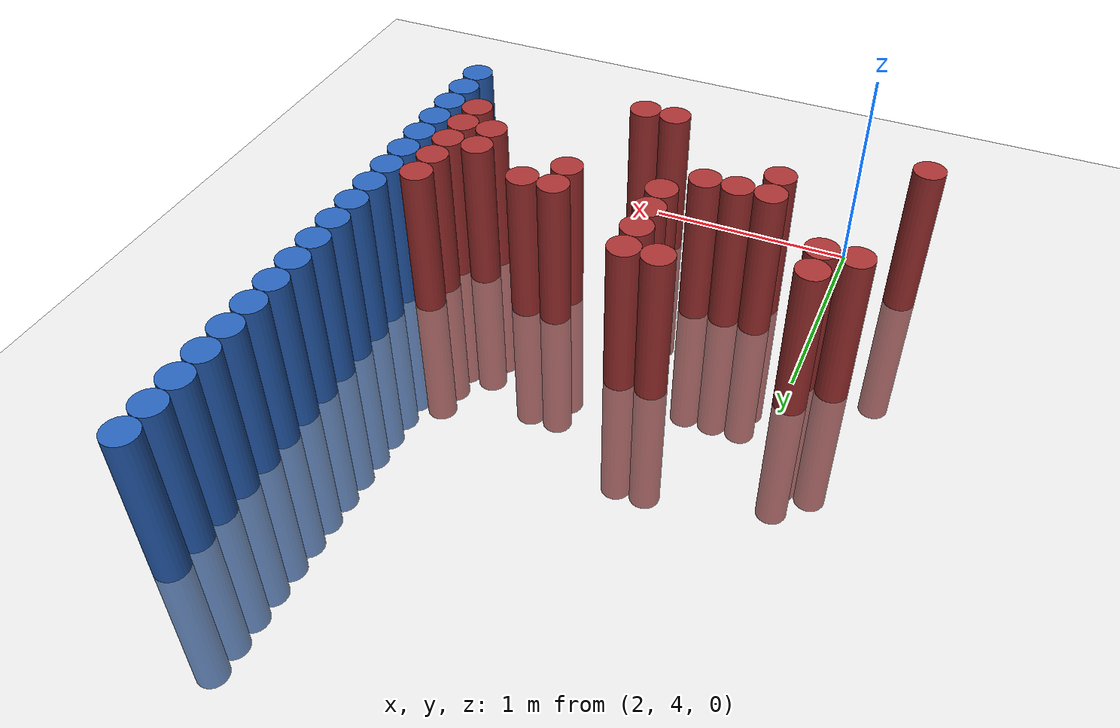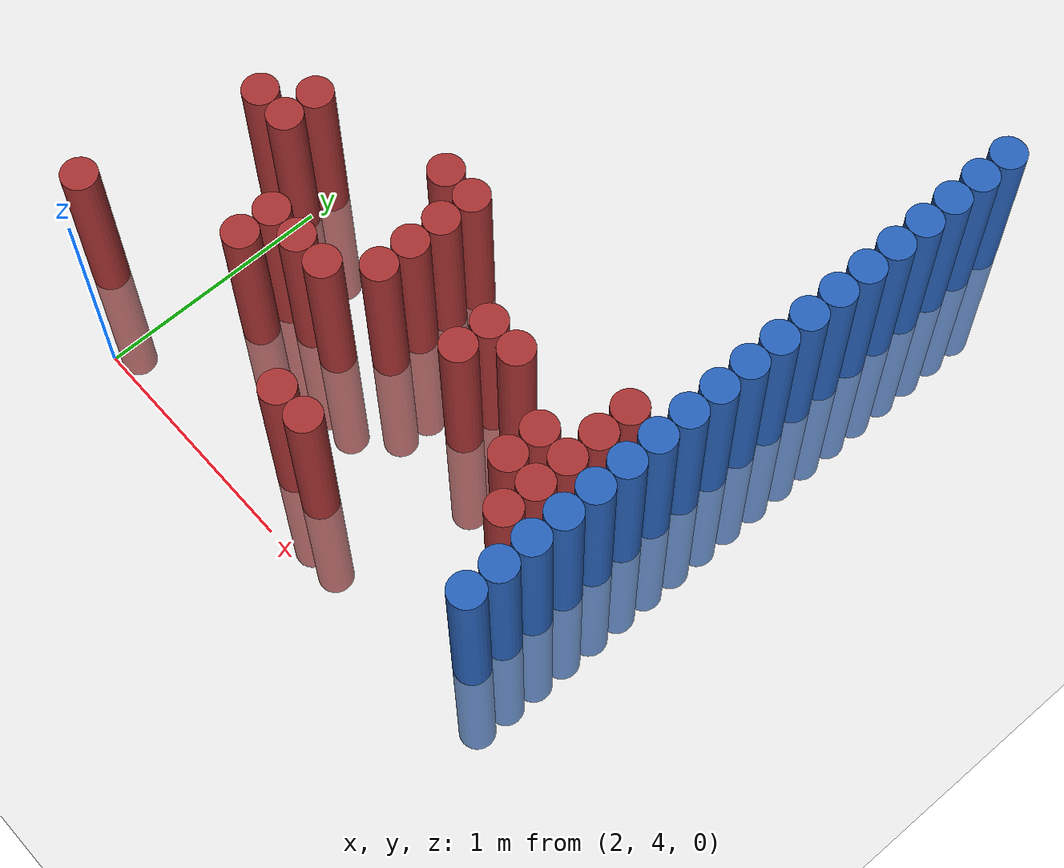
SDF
<sdf version="1.6">
 <world name="default">
  <model name="ground_plane">
   <static>1</static>
   <link name="link">
    <collision name="collision">
     <geometry><plane><normal>0 0 1</normal><size>100 100</size></plane></geometry>
     <surface><friction><ode><mu>100</mu><mu2>50</mu2></ode></friction></surface>
    </collision>
    <visual name="visual">
     <cast_shadows>0</cast_shadows>
     <geometry><plane><normal>0 0 1</normal><size>100 100</size></plane></geometry>
     <material>
      <script><uri>file://media/materials/scripts/gazebo.material</uri><name>Gazebo/Grey</name></script>
     </material>
    </visual>
   </link>
  </model>
  <model name="unit_cylinder_170">
   <static>1</static>
   <pose>3.925000 4.225000 0.000000 0.000000 0.000000 0.000000</pose>
   <link name="link">
    <inertial>
     <mass>1</mass>
     <inertia><ixx>0.145833</ixx><ixy>0</ixy><ixz>0</ixz><iyy>0.145833</iyy><iyz>0</iyz><izz>0.125</izz></inertia>
    </inertial>
    <collision name="collision">
     <geometry><cylinder><radius>0.075000</radius><length>1.5</length></cylinder></geometry>
    </collision>
    <visual name="visual">
     <geometry><cylinder><radius>0.075000</radius><length>1.5</length></cylinder></geometry>
     <material>
      <ambient>0.152000 0.379000 0.720000 1</ambient>
      <diffuse>0.152000 0.379000 0.720000 1</diffuse>
     </material>
     <material>
      <script><name>Gazebo/Grey</name><uri>file://media/materials/scripts/gazebo.material</uri></script>
     </material>
    </visual>
   </link>
  </model>
  <model name="unit_cylinder_172">
   <static>1</static>
   <pose>3.925000 4.375000 0.000000 0.000000 0.000000 0.000000</pose>
   <link name="link">
    <inertial>
     <mass>1</mass>
     <inertia><ixx>0.145833</ixx><ixy>0</ixy><ixz>0</ixz><iyy>0.145833</iyy><iyz>0</iyz><izz>0.125</izz></inertia>
    </inertial>
    <collision name="collision">
     <geometry><cylinder><radius>0.075000</radius><length>1.5</length></cylinder></geometry>
    </collision>
    <visual name="visual">
     <geometry><cylinder><radius>0.075000</radius><length>1.5</length></cylinder></geometry>
     <material>
      <ambient>0.152000 0.379000 0.720000 1</ambient>
      <diffuse>0.152000 0.379000 0.720000 1</diffuse>
     </material>
     <material>
      <script><name>Gazebo/Grey</name><uri>file://media/materials/scripts/gazebo.material</uri></script>
     </material>
    </visual>
   </link>
  </model>
  <model name="unit_cylinder_174">
   <static>1</static>
   <pose>3.925000 4.525000 0.000000 0.000000 0.000000 0.000000</pose>
   <link name="link">
    <inertial>
     <mass>1</mass>
     <inertia><ixx>0.145833</ixx><ixy>0</ixy><ixz>0</ixz><iyy>0.145833</iyy><iyz>0</iyz><izz>0.125</izz></inertia>
    </inertial>
    <collision name="collision">
     <geometry><cylinder><radius>0.075000</radius><length>1.5</length></cylinder></geometry>
    </collision>
    <visual name="visual">
     <geometry><cylinder><radius>0.075000</radius><length>1.5</length></cylinder></geometry>
     <material>
      <ambient>0.152000 0.379000 0.720000 1</ambient>
      <diffuse>0.152000 0.379000 0.720000 1</diffuse>
     </material>
     <material>
      <script><name>Gazebo/Grey</name><uri>file://media/materials/scripts/gazebo.material</uri></script>
     </material>
    </visual>
   </link>
  </model>
  <model name="unit_cylinder_176">
   <static>1</static>
   <pose>3.925000 4.675000 0.000000 0.000000 0.000000 0.000000</pose>
   <link name="link">
    <inertial>
     <mass>1</mass>
     <inertia><ixx>0.145833</ixx><ixy>0</ixy><ixz>0</ixz><iyy>0.145833</iyy><iyz>0</iyz><izz>0.125</izz></inertia>
    </inertial>
    <collision name="collision">
     <geometry><cylinder><radius>0.075000</radius><length>1.5</length></cylinder></geometry>
    </collision>
    <visual name="visual">
     <geometry><cylinder><radius>0.075000</radius><length>1.5</length></cylinder></geometry>
     <material>
      <ambient>0.152000 0.379000 0.720000 1</ambient>
      <diffuse>0.152000 0.379000 0.720000 1</diffuse>
     </material>
     <material>
      <script><name>Gazebo/Grey</name><uri>file://media/materials/scripts/gazebo.material</uri></script>
     </material>
    </visual>
   </link>
  </model>
  <model name="unit_cylinder_178">
   <static>1</static>
   <pose>3.925000 4.825000 0.000000 0.000000 0.000000 0.000000</pose>
   <link name="link">
    <inertial>
     <mass>1</mass>
     <inertia><ixx>0.145833</ixx><ixy>0</ixy><ixz>0</ixz><iyy>0.145833</iyy><iyz>0</iyz><izz>0.125</izz></inertia>
    </inertial>
    <collision name="collision">
     <geometry><cylinder><radius>0.075000</radius><length>1.5</length></cylinder></geometry>
    </collision>
    <visual name="visual">
     <geometry><cylinder><radius>0.075000</radius><length>1.5</length></cylinder></geometry>
     <material>
      <ambient>0.152000 0.379000 0.720000 1</ambient>
      <diffuse>0.152000 0.379000 0.720000 1</diffuse>
     </material>
     <material>
      <script><name>Gazebo/Grey</name><uri>file://media/materials/scripts/gazebo.material</uri></script>
     </material>
    </visual>
   </link>
  </model>
  <model name="unit_cylinder_180">
   <static>1</static>
   <pose>3.925000 4.975000 0.000000 0.000000 0.000000 0.000000</pose>
   <link name="link">
    <inertial>
     <mass>1</mass>
     <inertia><ixx>0.145833</ixx><ixy>0</ixy><ixz>0</ixz><iyy>0.145833</iyy><iyz>0</iyz><izz>0.125</izz></inertia>
    </inertial>
    <collision name="collision">
     <geometry><cylinder><radius>0.075000</radius><length>1.5</length></cylinder></geometry>
    </collision>
    <visual name="visual">
     <geometry><cylinder><radius>0.075000</radius><length>1.5</length></cylinder></geometry>
     <material>
      <ambient>0.152000 0.379000 0.720000 1</ambient>
      <diffuse>0.152000 0.379000 0.720000 1</diffuse>
     </material>
     <material>
      <script><name>Gazebo/Grey</name><uri>file://media/materials/scripts/gazebo.material</uri></script>
     </material>
    </visual>
   </link>
  </model>
  <model name="unit_cylinder_182">
   <static>1</static>
   <pose>3.925000 5.125000 0.000000 0.000000 0.000000 0.000000</pose>
   <link name="link">
    <inertial>
     <mass>1</mass>
     <inertia><ixx>0.145833</ixx><ixy>0</ixy><ixz>0</ixz><iyy>0.145833</iyy><iyz>0</iyz><izz>0.125</izz></inertia>
    </inertial>
    <collision name="collision">
     <geometry><cylinder><radius>0.075000</radius><length>1.5</length></cylinder></geometry>
    </collision>
    <visual name="visual">
     <geometry><cylinder><radius>0.075000</radius><length>1.5</length></cylinder></geometry>
     <material>
      <ambient>0.152000 0.379000 0.720000 1</ambient>
      <diffuse>0.152000 0.379000 0.720000 1</diffuse>
     </material>
     <material>
      <script><name>Gazebo/Grey</name><uri>file://media/materials/scripts/gazebo.material</uri></script>
     </material>
    </visual>
   </link>
  </model>
  <model name="unit_cylinder_184">
   <static>1</static>
   <pose>3.925000 5.275000 0.000000 0.000000 0.000000 0.000000</pose>
   <link name="link">
    <inertial>
     <mass>1</mass>
     <inertia><ixx>0.145833</ixx><ixy>0</ixy><ixz>0</ixz><iyy>0.145833</iyy><iyz>0</iyz><izz>0.125</izz></inertia>
    </inertial>
    <collision name="collision">
     <geometry><cylinder><radius>0.075000</radius><length>1.5</length></cylinder></geometry>
    </collision>
    <visual name="visual">
     <geometry><cylinder><radius>0.075000</radius><length>1.5</length></cylinder></geometry>
     <material>
      <ambient>0.152000 0.379000 0.720000 1</ambient>
      <diffuse>0.152000 0.379000 0.720000 1</diffuse>
     </material>
     <material>
      <script><name>Gazebo/Grey</name><uri>file://media/materials/scripts/gazebo.material</uri></script>
     </material>
    </visual>
   </link>
  </model>
  <model name="unit_cylinder_186">
   <static>1</static>
   <pose>3.925000 5.425000 0.000000 0.000000 0.000000 0.000000</pose>
   <link name="link">
    <inertial>
     <mass>1</mass>
     <inertia><ixx>0.145833</ixx><ixy>0</ixy><ixz>0</ixz><iyy>0.145833</iyy><iyz>0</iyz><izz>0.125</izz></inertia>
    </inertial>
    <collision name="collision">
     <geometry><cylinder><radius>0.075000</radius><length>1.5</length></cylinder></geometry>
    </collision>
    <visual name="visual">
     <geometry><cylinder><radius>0.075000</radius><length>1.5</length></cylinder></geometry>
     <material>
      <ambient>0.152000 0.379000 0.720000 1</ambient>
      <diffuse>0.152000 0.379000 0.720000 1</diffuse>
     </material>
     <material>
      <script><name>Gazebo/Grey</name><uri>file://media/materials/scripts/gazebo.material</uri></script>
     </material>
    </visual>
   </link>
  </model>
  <model name="unit_cylinder_188">
   <static>1</static>
   <pose>3.925000 5.575000 0.000000 0.000000 0.000000 0.000000</pose>
   <link name="link">
    <inertial>
     <mass>1</mass>
     <inertia><ixx>0.145833</ixx><ixy>0</ixy><ixz>0</ixz><iyy>0.145833</iyy><iyz>0</iyz><izz>0.125</izz></inertia>
    </inertial>
    <collision name="collision">
     <geometry><cylinder><radius>0.075000</radius><length>1.5</length></cylinder></geometry>
    </collision>
    <visual name="visual">
     <geometry><cylinder><radius>0.075000</radius><length>1.5</length></cylinder></geometry>
     <material>
      <ambient>0.152000 0.379000 0.720000 1</ambient>
      <diffuse>0.152000 0.379000 0.720000 1</diffuse>
     </material>
     <material>
      <script><name>Gazebo/Grey</name><uri>file://media/materials/scripts/gazebo.material</uri></script>
     </material>
    </visual>
   </link>
  </model>
  <model name="unit_cylinder_190">
   <static>1</static>
   <pose>3.925000 5.725000 0.000000 0.000000 0.000000 0.000000</pose>
   <link name="link">
    <inertial>
     <mass>1</mass>
     <inertia><ixx>0.145833</ixx><ixy>0</ixy><ixz>0</ixz><iyy>0.145833</iyy><iyz>0</iyz><izz>0.125</izz></inertia>
    </inertial>
    <collision name="collision">
     <geometry><cylinder><radius>0.075000</radius><length>1.5</length></cylinder></geometry>
    </collision>
    <visual name="visual">
     <geometry><cylinder><radius>0.075000</radius><length>1.5</length></cylinder></geometry>
     <material>
      <ambient>0.152000 0.379000 0.720000 1</ambient>
      <diffuse>0.152000 0.379000 0.720000 1</diffuse>
     </material>
     <material>
      <script><name>Gazebo/Grey</name><uri>file://media/materials/scripts/gazebo.material</uri></script>
     </material>
    </visual>
   </link>
  </model>
  <model name="unit_cylinder_192">
   <static>1</static>
   <pose>3.925000 5.875000 0.000000 0.000000 0.000000 0.000000</pose>
   <link name="link">
    <inertial>
     <mass>1</mass>
     <inertia><ixx>0.145833</ixx><ixy>0</ixy><ixz>0</ixz><iyy>0.145833</iyy><iyz>0</iyz><izz>0.125</izz></inertia>
    </inertial>
    <collision name="collision">
     <geometry><cylinder><radius>0.075000</radius><length>1.5</length></cylinder></geometry>
    </collision>
    <visual name="visual">
     <geometry><cylinder><radius>0.075000</radius><length>1.5</length></cylinder></geometry>
     <material>
      <ambient>0.152000 0.379000 0.720000 1</ambient>
      <diffuse>0.152000 0.379000 0.720000 1</diffuse>
     </material>
     <material>
      <script><name>Gazebo/Grey</name><uri>file://media/materials/scripts/gazebo.material</uri></script>
     </material>
    </visual>
   </link>
  </model>
  <model name="unit_cylinder_194">
   <static>1</static>
   <pose>3.925000 6.025000 0.000000 0.000000 0.000000 0.000000</pose>
   <link name="link">
    <inertial>
     <mass>1</mass>
     <inertia><ixx>0.145833</ixx><ixy>0</ixy><ixz>0</ixz><iyy>0.145833</iyy><iyz>0</iyz><izz>0.125</izz></inertia>
    </inertial>
    <collision name="collision">
     <geometry><cylinder><radius>0.075000</radius><length>1.5</length></cylinder></geometry>
    </collision>
    <visual name="visual">
     <geometry><cylinder><radius>0.075000</radius><length>1.5</length></cylinder></geometry>
     <material>
      <ambient>0.152000 0.379000 0.720000 1</ambient>
      <diffuse>0.152000 0.379000 0.720000 1</diffuse>
     </material>
     <material>
      <script><name>Gazebo/Grey</name><uri>file://media/materials/scripts/gazebo.material</uri></script>
     </material>
    </visual>
   </link>
  </model>
  <model name="unit_cylinder_196">
   <static>1</static>
   <pose>3.925000 6.175000 0.000000 0.000000 0.000000 0.000000</pose>
   <link name="link">
    <inertial>
     <mass>1</mass>
     <inertia><ixx>0.145833</ixx><ixy>0</ixy><ixz>0</ixz><iyy>0.145833</iyy><iyz>0</iyz><izz>0.125</izz></inertia>
    </inertial>
    <collision name="collision">
     <geometry><cylinder><radius>0.075000</radius><length>1.5</length></cylinder></geometry>
    </collision>
    <visual name="visual">
     <geometry><cylinder><radius>0.075000</radius><length>1.5</length></cylinder></geometry>
     <material>
      <ambient>0.152000 0.379000 0.720000 1</ambient>
      <diffuse>0.152000 0.379000 0.720000 1</diffuse>
     </material>
     <material>
      <script><name>Gazebo/Grey</name><uri>file://media/materials/scripts/gazebo.material</uri></script>
     </material>
    </visual>
   </link>
  </model>
  <model name="unit_cylinder_198">
   <static>1</static>
   <pose>3.925000 6.325000 0.000000 0.000000 0.000000 0.000000</pose>
   <link name="link">
    <inertial>
     <mass>1</mass>
     <inertia><ixx>0.145833</ixx><ixy>0</ixy><ixz>0</ixz><iyy>0.145833</iyy><iyz>0</iyz><izz>0.125</izz></inertia>
    </inertial>
    <collision name="collision">
     <geometry><cylinder><radius>0.075000</radius><length>1.5</length></cylinder></geometry>
    </collision>
    <visual name="visual">
     <geometry><cylinder><radius>0.075000</radius><length>1.5</length></cylinder></geometry>
     <material>
      <ambient>0.152000 0.379000 0.720000 1</ambient>
      <diffuse>0.152000 0.379000 0.720000 1</diffuse>
     </material>
     <material>
      <script><name>Gazebo/Grey</name><uri>file://media/materials/scripts/gazebo.material</uri></script>
     </material>
    </visual>
   </link>
  </model>
  <model name="unit_cylinder_200">
   <static>1</static>
   <pose>3.925000 6.475000 0.000000 0.000000 0.000000 0.000000</pose>
   <link name="link">
    <inertial>
     <mass>1</mass>
     <inertia><ixx>0.145833</ixx><ixy>0</ixy><ixz>0</ixz><iyy>0.145833</iyy><iyz>0</iyz><izz>0.125</izz></inertia>
    </inertial>
    <collision name="collision">
     <geometry><cylinder><radius>0.075000</radius><length>1.5</length></cylinder></geometry>
    </collision>
    <visual name="visual">
     <geometry><cylinder><radius>0.075000</radius><length>1.5</length></cylinder></geometry>
     <material>
      <ambient>0.152000 0.379000 0.720000 1</ambient>
      <diffuse>0.152000 0.379000 0.720000 1</diffuse>
     </material>
     <material>
      <script><name>Gazebo/Grey</name><uri>file://media/materials/scripts/gazebo.material</uri></script>
     </material>
    </visual>
   </link>
  </model>
  <model name="unit_cylinder_202">
   <static>1</static>
   <pose>3.925000 6.625000 0.000000 0.000000 0.000000 0.000000</pose>
   <link name="link">
    <inertial>
     <mass>1</mass>
     <inertia><ixx>0.145833</ixx><ixy>0</ixy><ixz>0</ixz><iyy>0.145833</iyy><iyz>0</iyz><izz>0.125</izz></inertia>
    </inertial>
    <collision name="collision">
     <geometry><cylinder><radius>0.075000</radius><length>1.5</length></cylinder></geometry>
    </collision>
    <visual name="visual">
     <geometry><cylinder><radius>0.075000</radius><length>1.5</length></cylinder></geometry>
     <material>
      <ambient>0.152000 0.379000 0.720000 1</ambient>
      <diffuse>0.152000 0.379000 0.720000 1</diffuse>
     </material>
     <material>
      <script><name>Gazebo/Grey</name><uri>file://media/materials/scripts/gazebo.material</uri></script>
     </material>
    </visual>
   </link>
  </model>
  <model name="unit_cylinder_204">
   <static>1</static>
   <pose>3.925000 6.775000 0.000000 0.000000 0.000000 0.000000</pose>
   <link name="link">
    <inertial>
     <mass>1</mass>
     <inertia><ixx>0.145833</ixx><ixy>0</ixy><ixz>0</ixz><iyy>0.145833</iyy><iyz>0</iyz><izz>0.125</izz></inertia>
    </inertial>
    <collision name="collision">
     <geometry><cylinder><radius>0.075000</radius><length>1.5</length></cylinder></geometry>
    </collision>
    <visual name="visual">
     <geometry><cylinder><radius>0.075000</radius><length>1.5</length></cylinder></geometry>
     <material>
      <ambient>0.152000 0.379000 0.720000 1</ambient>
      <diffuse>0.152000 0.379000 0.720000 1</diffuse>
     </material>
     <material>
      <script><name>Gazebo/Grey</name><uri>file://media/materials/scripts/gazebo.material</uri></script>
     </material>
    </visual>
   </link>
  </model>
  <model name="unit_cylinder_206">
   <static>1</static>
   <pose>3.925000 6.925000 0.000000 0.000000 0.000000 0.000000</pose>
   <link name="link">
    <inertial>
     <mass>1</mass>
     <inertia><ixx>0.145833</ixx><ixy>0</ixy><ixz>0</ixz><iyy>0.145833</iyy><iyz>0</iyz><izz>0.125</izz></inertia>
    </inertial>
    <collision name="collision">
     <geometry><cylinder><radius>0.075000</radius><length>1.5</length></cylinder></geometry>
    </collision>
    <visual name="visual">
     <geometry><cylinder><radius>0.075000</radius><length>1.5</length></cylinder></geometry>
     <material>
      <ambient>0.152000 0.379000 0.720000 1</ambient>
      <diffuse>0.152000 0.379000 0.720000 1</diffuse>
     </material>
     <material>
      <script><name>Gazebo/Grey</name><uri>file://media/materials/scripts/gazebo.material</uri></script>
     </material>
    </visual>
   </link>
  </model>
  <model name="unit_cylinder_443">
   <static>1</static>
   <pose>1.675000 4.225000 0.000000 0.000000 0.000000 0.000000</pose>
   <link name="link">
    <inertial>
     <mass>1</mass>
     <inertia><ixx>0.145833</ixx><ixy>0</ixy><ixz>0</ixz><iyy>0.145833</iyy><iyz>0</iyz><izz>0.125</izz></inertia>
    </inertial>
    <collision name="collision">
     <geometry><cylinder><radius>0.075000</radius><length>1.5</length></cylinder></geometry>
    </collision>
    <visual name="visual">
     <geometry><cylinder><radius>0.075000</radius><length>1.5</length></cylinder></geometry>
     <material>
      <ambient>0.648000 0.192000 0.192000 1</ambient>
      <diffuse>0.648000 0.192000 0.192000 1</diffuse>
     </material>
     <material>
      <script><name>Gazebo/Grey</name><uri>file://media/materials/scripts/gazebo.material</uri></script>
     </material>
    </visual>
   </link>
  </model>
  <model name="unit_cylinder_447">
   <static>1</static>
   <pose>1.825000 4.975000 0.000000 0.000000 0.000000 0.000000</pose>
   <link name="link">
    <inertial>
     <mass>1</mass>
     <inertia><ixx>0.145833</ixx><ixy>0</ixy><ixz>0</ixz><iyy>0.145833</iyy><iyz>0</iyz><izz>0.125</izz></inertia>
    </inertial>
    <collision name="collision">
     <geometry><cylinder><radius>0.075000</radius><length>1.5</length></cylinder></geometry>
    </collision>
    <visual name="visual">
     <geometry><cylinder><radius>0.075000</radius><length>1.5</length></cylinder></geometry>
     <material>
      <ambient>0.648000 0.192000 0.192000 1</ambient>
      <diffuse>0.648000 0.192000 0.192000 1</diffuse>
     </material>
     <material>
      <script><name>Gazebo/Grey</name><uri>file://media/materials/scripts/gazebo.material</uri></script>
     </material>
    </visual>
   </link>
  </model>
  <model name="unit_cylinder_454">
   <static>1</static>
   <pose>1.975000 4.975000 0.000000 0.000000 0.000000 0.000000</pose>
   <link name="link">
    <inertial>
     <mass>1</mass>
     <inertia><ixx>0.145833</ixx><ixy>0</ixy><ixz>0</ixz><iyy>0.145833</iyy><iyz>0</iyz><izz>0.125</izz></inertia>
    </inertial>
    <collision name="collision">
     <geometry><cylinder><radius>0.075000</radius><length>1.5</length></cylinder></geometry>
    </collision>
    <visual name="visual">
     <geometry><cylinder><radius>0.075000</radius><length>1.5</length></cylinder></geometry>
     <material>
      <ambient>0.648000 0.192000 0.192000 1</ambient>
      <diffuse>0.648000 0.192000 0.192000 1</diffuse>
     </material>
     <material>
      <script><name>Gazebo/Grey</name><uri>file://media/materials/scripts/gazebo.material</uri></script>
     </material>
    </visual>
   </link>
  </model>
  <model name="unit_cylinder_455">
   <static>1</static>
   <pose>1.975000 5.125000 0.000000 0.000000 0.000000 0.000000</pose>
   <link name="link">
    <inertial>
     <mass>1</mass>
     <inertia><ixx>0.145833</ixx><ixy>0</ixy><ixz>0</ixz><iyy>0.145833</iyy><iyz>0</iyz><izz>0.125</izz></inertia>
    </inertial>
    <collision name="collision">
     <geometry><cylinder><radius>0.075000</radius><length>1.5</length></cylinder></geometry>
    </collision>
    <visual name="visual">
     <geometry><cylinder><radius>0.075000</radius><length>1.5</length></cylinder></geometry>
     <material>
      <ambient>0.648000 0.192000 0.192000 1</ambient>
      <diffuse>0.648000 0.192000 0.192000 1</diffuse>
     </material>
     <material>
      <script><name>Gazebo/Grey</name><uri>file://media/materials/scripts/gazebo.material</uri></script>
     </material>
    </visual>
   </link>
  </model>
  <model name="unit_cylinder_471">
   <static>1</static>
   <pose>2.275000 4.525000 0.000000 0.000000 0.000000 0.000000</pose>
   <link name="link">
    <inertial>
     <mass>1</mass>
     <inertia><ixx>0.145833</ixx><ixy>0</ixy><ixz>0</ixz><iyy>0.145833</iyy><iyz>0</iyz><izz>0.125</izz></inertia>
    </inertial>
    <collision name="collision">
     <geometry><cylinder><radius>0.075000</radius><length>1.5</length></cylinder></geometry>
    </collision>
    <visual name="visual">
     <geometry><cylinder><radius>0.075000</radius><length>1.5</length></cylinder></geometry>
     <material>
      <ambient>0.648000 0.192000 0.192000 1</ambient>
      <diffuse>0.648000 0.192000 0.192000 1</diffuse>
     </material>
     <material>
      <script><name>Gazebo/Grey</name><uri>file://media/materials/scripts/gazebo.material</uri></script>
     </material>
    </visual>
   </link>
  </model>
  <model name="unit_cylinder_472">
   <static>1</static>
   <pose>2.275000 4.675000 0.000000 0.000000 0.000000 0.000000</pose>
   <link name="link">
    <inertial>
     <mass>1</mass>
     <inertia><ixx>0.145833</ixx><ixy>0</ixy><ixz>0</ixz><iyy>0.145833</iyy><iyz>0</iyz><izz>0.125</izz></inertia>
    </inertial>
    <collision name="collision">
     <geometry><cylinder><radius>0.075000</radius><length>1.5</length></cylinder></geometry>
    </collision>
    <visual name="visual">
     <geometry><cylinder><radius>0.075000</radius><length>1.5</length></cylinder></geometry>
     <material>
      <ambient>0.648000 0.192000 0.192000 1</ambient>
      <diffuse>0.648000 0.192000 0.192000 1</diffuse>
     </material>
     <material>
      <script><name>Gazebo/Grey</name><uri>file://media/materials/scripts/gazebo.material</uri></script>
     </material>
    </visual>
   </link>
  </model>
  <model name="unit_cylinder_479">
   <static>1</static>
   <pose>2.425000 4.675000 0.000000 0.000000 0.000000 0.000000</pose>
   <link name="link">
    <inertial>
     <mass>1</mass>
     <inertia><ixx>0.145833</ixx><ixy>0</ixy><ixz>0</ixz><iyy>0.145833</iyy><iyz>0</iyz><izz>0.125</izz></inertia>
    </inertial>
    <collision name="collision">
     <geometry><cylinder><radius>0.075000</radius><length>1.5</length></cylinder></geometry>
    </collision>
    <visual name="visual">
     <geometry><cylinder><radius>0.075000</radius><length>1.5</length></cylinder></geometry>
     <material>
      <ambient>0.648000 0.192000 0.192000 1</ambient>
      <diffuse>0.648000 0.192000 0.192000 1</diffuse>
     </material>
     <material>
      <script><name>Gazebo/Grey</name><uri>file://media/materials/scripts/gazebo.material</uri></script>
     </material>
    </visual>
   </link>
  </model>
  <model name="unit_cylinder_481">
   <static>1</static>
   <pose>2.575000 4.675000 0.000000 0.000000 0.000000 0.000000</pose>
   <link name="link">
    <inertial>
     <mass>1</mass>
     <inertia><ixx>0.145833</ixx><ixy>0</ixy><ixz>0</ixz><iyy>0.145833</iyy><iyz>0</iyz><izz>0.125</izz></inertia>
    </inertial>
    <collision name="collision">
     <geometry><cylinder><radius>0.075000</radius><length>1.5</length></cylinder></geometry>
    </collision>
    <visual name="visual">
     <geometry><cylinder><radius>0.075000</radius><length>1.5</length></cylinder></geometry>
     <material>
      <ambient>0.648000 0.192000 0.192000 1</ambient>
      <diffuse>0.648000 0.192000 0.192000 1</diffuse>
     </material>
     <material>
      <script><name>Gazebo/Grey</name><uri>file://media/materials/scripts/gazebo.material</uri></script>
     </material>
    </visual>
   </link>
  </model>
  <model name="unit_cylinder_482">
   <static>1</static>
   <pose>2.575000 5.275000 0.000000 0.000000 0.000000 0.000000</pose>
   <link name="link">
    <inertial>
     <mass>1</mass>
     <inertia><ixx>0.145833</ixx><ixy>0</ixy><ixz>0</ixz><iyy>0.145833</iyy><iyz>0</iyz><izz>0.125</izz></inertia>
    </inertial>
    <collision name="collision">
     <geometry><cylinder><radius>0.075000</radius><length>1.5</length></cylinder></geometry>
    </collision>
    <visual name="visual">
     <geometry><cylinder><radius>0.075000</radius><length>1.5</length></cylinder></geometry>
     <material>
      <ambient>0.648000 0.192000 0.192000 1</ambient>
      <diffuse>0.648000 0.192000 0.192000 1</diffuse>
     </material>
     <material>
      <script><name>Gazebo/Grey</name><uri>file://media/materials/scripts/gazebo.material</uri></script>
     </material>
    </visual>
   </link>
  </model>
  <model name="unit_cylinder_487">
   <static>1</static>
   <pose>2.725000 4.825000 0.000000 0.000000 0.000000 0.000000</pose>
   <link name="link">
    <inertial>
     <mass>1</mass>
     <inertia><ixx>0.145833</ixx><ixy>0</ixy><ixz>0</ixz><iyy>0.145833</iyy><iyz>0</iyz><izz>0.125</izz></inertia>
    </inertial>
    <collision name="collision">
     <geometry><cylinder><radius>0.075000</radius><length>1.5</length></cylinder></geometry>
    </collision>
    <visual name="visual">
     <geometry><cylinder><radius>0.075000</radius><length>1.5</length></cylinder></geometry>
     <material>
      <ambient>0.648000 0.192000 0.192000 1</ambient>
      <diffuse>0.648000 0.192000 0.192000 1</diffuse>
     </material>
     <material>
      <script><name>Gazebo/Grey</name><uri>file://media/materials/scripts/gazebo.material</uri></script>
     </material>
    </visual>
   </link>
  </model>
  <model name="unit_cylinder_488">
   <static>1</static>
   <pose>2.725000 4.975000 0.000000 0.000000 0.000000 0.000000</pose>
   <link name="link">
    <inertial>
     <mass>1</mass>
     <inertia><ixx>0.145833</ixx><ixy>0</ixy><ixz>0</ixz><iyy>0.145833</iyy><iyz>0</iyz><izz>0.125</izz></inertia>
    </inertial>
    <collision name="collision">
     <geometry><cylinder><radius>0.075000</radius><length>1.5</length></cylinder></geometry>
    </collision>
    <visual name="visual">
     <geometry><cylinder><radius>0.075000</radius><length>1.5</length></cylinder></geometry>
     <material>
      <ambient>0.648000 0.192000 0.192000 1</ambient>
      <diffuse>0.648000 0.192000 0.192000 1</diffuse>
     </material>
     <material>
      <script><name>Gazebo/Grey</name><uri>file://media/materials/scripts/gazebo.material</uri></script>
     </material>
    </visual>
   </link>
  </model>
  <model name="unit_cylinder_489">
   <static>1</static>
   <pose>2.725000 5.125000 0.000000 0.000000 0.000000 0.000000</pose>
   <link name="link">
    <inertial>
     <mass>1</mass>
     <inertia><ixx>0.145833</ixx><ixy>0</ixy><ixz>0</ixz><iyy>0.145833</iyy><iyz>0</iyz><izz>0.125</izz></inertia>
    </inertial>
    <collision name="collision">
     <geometry><cylinder><radius>0.075000</radius><length>1.5</length></cylinder></geometry>
    </collision>
    <visual name="visual">
     <geometry><cylinder><radius>0.075000</radius><length>1.5</length></cylinder></geometry>
     <material>
      <ambient>0.648000 0.192000 0.192000 1</ambient>
      <diffuse>0.648000 0.192000 0.192000 1</diffuse>
     </material>
     <material>
      <script><name>Gazebo/Grey</name><uri>file://media/materials/scripts/gazebo.material</uri></script>
     </material>
    </visual>
   </link>
  </model>
  <model name="unit_cylinder_490">
   <static>1</static>
   <pose>2.725000 5.275000 0.000000 0.000000 0.000000 0.000000</pose>
   <link name="link">
    <inertial>
     <mass>1</mass>
     <inertia><ixx>0.145833</ixx><ixy>0</ixy><ixz>0</ixz><iyy>0.145833</iyy><iyz>0</iyz><izz>0.125</izz></inertia>
    </inertial>
    <collision name="collision">
     <geometry><cylinder><radius>0.075000</radius><length>1.5</length></cylinder></geometry>
    </collision>
    <visual name="visual">
     <geometry><cylinder><radius>0.075000</radius><length>1.5</length></cylinder></geometry>
     <material>
      <ambient>0.648000 0.192000 0.192000 1</ambient>
      <diffuse>0.648000 0.192000 0.192000 1</diffuse>
     </material>
     <material>
      <script><name>Gazebo/Grey</name><uri>file://media/materials/scripts/gazebo.material</uri></script>
     </material>
    </visual>
   </link>
  </model>
  <model name="unit_cylinder_499">
   <static>1</static>
   <pose>2.875000 4.225000 0.000000 0.000000 0.000000 0.000000</pose>
   <link name="link">
    <inertial>
     <mass>1</mass>
     <inertia><ixx>0.145833</ixx><ixy>0</ixy><ixz>0</ixz><iyy>0.145833</iyy><iyz>0</iyz><izz>0.125</izz></inertia>
    </inertial>
    <collision name="collision">
     <geometry><cylinder><radius>0.075000</radius><length>1.5</length></cylinder></geometry>
    </collision>
    <visual name="visual">
     <geometry><cylinder><radius>0.075000</radius><length>1.5</length></cylinder></geometry>
     <material>
      <ambient>0.648000 0.192000 0.192000 1</ambient>
      <diffuse>0.648000 0.192000 0.192000 1</diffuse>
     </material>
     <material>
      <script><name>Gazebo/Grey</name><uri>file://media/materials/scripts/gazebo.material</uri></script>
     </material>
    </visual>
   </link>
  </model>
  <model name="unit_cylinder_511">
   <static>1</static>
   <pose>3.025000 4.225000 0.000000 0.000000 0.000000 0.000000</pose>
   <link name="link">
    <inertial>
     <mass>1</mass>
     <inertia><ixx>0.145833</ixx><ixy>0</ixy><ixz>0</ixz><iyy>0.145833</iyy><iyz>0</iyz><izz>0.125</izz></inertia>
    </inertial>
    <collision name="collision">
     <geometry><cylinder><radius>0.075000</radius><length>1.5</length></cylinder></geometry>
    </collision>
    <visual name="visual">
     <geometry><cylinder><radius>0.075000</radius><length>1.5</length></cylinder></geometry>
     <material>
      <ambient>0.648000 0.192000 0.192000 1</ambient>
      <diffuse>0.648000 0.192000 0.192000 1</diffuse>
     </material>
     <material>
      <script><name>Gazebo/Grey</name><uri>file://media/materials/scripts/gazebo.material</uri></script>
     </material>
    </visual>
   </link>
  </model>
  <model name="unit_cylinder_523">
   <static>1</static>
   <pose>3.175000 4.825000 0.000000 0.000000 0.000000 0.000000</pose>
   <link name="link">
    <inertial>
     <mass>1</mass>
     <inertia><ixx>0.145833</ixx><ixy>0</ixy><ixz>0</ixz><iyy>0.145833</iyy><iyz>0</iyz><izz>0.125</izz></inertia>
    </inertial>
    <collision name="collision">
     <geometry><cylinder><radius>0.075000</radius><length>1.5</length></cylinder></geometry>
    </collision>
    <visual name="visual">
     <geometry><cylinder><radius>0.075000</radius><length>1.5</length></cylinder></geometry>
     <material>
      <ambient>0.648000 0.192000 0.192000 1</ambient>
      <diffuse>0.648000 0.192000 0.192000 1</diffuse>
     </material>
     <material>
      <script><name>Gazebo/Grey</name><uri>file://media/materials/scripts/gazebo.material</uri></script>
     </material>
    </visual>
   </link>
  </model>
  <model name="unit_cylinder_524">
   <static>1</static>
   <pose>3.175000 4.975000 0.000000 0.000000 0.000000 0.000000</pose>
   <link name="link">
    <inertial>
     <mass>1</mass>
     <inertia><ixx>0.145833</ixx><ixy>0</ixy><ixz>0</ixz><iyy>0.145833</iyy><iyz>0</iyz><izz>0.125</izz></inertia>
    </inertial>
    <collision name="collision">
     <geometry><cylinder><radius>0.075000</radius><length>1.5</length></cylinder></geometry>
    </collision>
    <visual name="visual">
     <geometry><cylinder><radius>0.075000</radius><length>1.5</length></cylinder></geometry>
     <material>
      <ambient>0.648000 0.192000 0.192000 1</ambient>
      <diffuse>0.648000 0.192000 0.192000 1</diffuse>
     </material>
     <material>
      <script><name>Gazebo/Grey</name><uri>file://media/materials/scripts/gazebo.material</uri></script>
     </material>
    </visual>
   </link>
  </model>
  <model name="unit_cylinder_530">
   <static>1</static>
   <pose>3.325000 4.975000 0.000000 0.000000 0.000000 0.000000</pose>
   <link name="link">
    <inertial>
     <mass>1</mass>
     <inertia><ixx>0.145833</ixx><ixy>0</ixy><ixz>0</ixz><iyy>0.145833</iyy><iyz>0</iyz><izz>0.125</izz></inertia>
    </inertial>
    <collision name="collision">
     <geometry><cylinder><radius>0.075000</radius><length>1.5</length></cylinder></geometry>
    </collision>
    <visual name="visual">
     <geometry><cylinder><radius>0.075000</radius><length>1.5</length></cylinder></geometry>
     <material>
      <ambient>0.648000 0.192000 0.192000 1</ambient>
      <diffuse>0.648000 0.192000 0.192000 1</diffuse>
     </material>
     <material>
      <script><name>Gazebo/Grey</name><uri>file://media/materials/scripts/gazebo.material</uri></script>
     </material>
    </visual>
   </link>
  </model>
  <model name="unit_cylinder_547">
   <static>1</static>
   <pose>3.625000 4.675000 0.000000 0.000000 0.000000 0.000000</pose>
   <link name="link">
    <inertial>
     <mass>1</mass>
     <inertia><ixx>0.145833</ixx><ixy>0</ixy><ixz>0</ixz><iyy>0.145833</iyy><iyz>0</iyz><izz>0.125</izz></inertia>
    </inertial>
    <collision name="collision">
     <geometry><cylinder><radius>0.075000</radius><length>1.5</length></cylinder></geometry>
    </collision>
    <visual name="visual">
     <geometry><cylinder><radius>0.075000</radius><length>1.5</length></cylinder></geometry>
     <material>
      <ambient>0.648000 0.192000 0.192000 1</ambient>
      <diffuse>0.648000 0.192000 0.192000 1</diffuse>
     </material>
     <material>
      <script><name>Gazebo/Grey</name><uri>file://media/materials/scripts/gazebo.material</uri></script>
     </material>
    </visual>
   </link>
  </model>
  <model name="unit_cylinder_548">
   <static>1</static>
   <pose>3.625000 4.825000 0.000000 0.000000 0.000000 0.000000</pose>
   <link name="link">
    <inertial>
     <mass>1</mass>
     <inertia><ixx>0.145833</ixx><ixy>0</ixy><ixz>0</ixz><iyy>0.145833</iyy><iyz>0</iyz><izz>0.125</izz></inertia>
    </inertial>
    <collision name="collision">
     <geometry><cylinder><radius>0.075000</radius><length>1.5</length></cylinder></geometry>
    </collision>
    <visual name="visual">
     <geometry><cylinder><radius>0.075000</radius><length>1.5</length></cylinder></geometry>
     <material>
      <ambient>0.648000 0.192000 0.192000 1</ambient>
      <diffuse>0.648000 0.192000 0.192000 1</diffuse>
     </material>
     <material>
      <script><name>Gazebo/Grey</name><uri>file://media/materials/scripts/gazebo.material</uri></script>
     </material>
    </visual>
   </link>
  </model>
  <model name="unit_cylinder_576">
   <static>1</static>
   <pose>3.775000 4.525000 0.000000 0.000000 0.000000 0.000000</pose>
   <link name="link">
    <inertial>
     <mass>1</mass>
     <inertia><ixx>0.145833</ixx><ixy>0</ixy><ixz>0</ixz><iyy>0.145833</iyy><iyz>0</iyz><izz>0.125</izz></inertia>
    </inertial>
    <collision name="collision">
     <geometry><cylinder><radius>0.075000</radius><length>1.5</length></cylinder></geometry>
    </collision>
    <visual name="visual">
     <geometry><cylinder><radius>0.075000</radius><length>1.5</length></cylinder></geometry>
     <material>
      <ambient>0.648000 0.192000 0.192000 1</ambient>
      <diffuse>0.648000 0.192000 0.192000 1</diffuse>
     </material>
     <material>
      <script><name>Gazebo/Grey</name><uri>file://media/materials/scripts/gazebo.material</uri></script>
     </material>
    </visual>
   </link>
  </model>
  <model name="unit_cylinder_577">
   <static>1</static>
   <pose>3.775000 4.675000 0.000000 0.000000 0.000000 0.000000</pose>
   <link name="link">
    <inertial>
     <mass>1</mass>
     <inertia><ixx>0.145833</ixx><ixy>0</ixy><ixz>0</ixz><iyy>0.145833</iyy><iyz>0</iyz><izz>0.125</izz></inertia>
    </inertial>
    <collision name="collision">
     <geometry><cylinder><radius>0.075000</radius><length>1.5</length></cylinder></geometry>
    </collision>
    <visual name="visual">
     <geometry><cylinder><radius>0.075000</radius><length>1.5</length></cylinder></geometry>
     <material>
      <ambient>0.648000 0.192000 0.192000 1</ambient>
      <diffuse>0.648000 0.192000 0.192000 1</diffuse>
     </material>
     <material>
      <script><name>Gazebo/Grey</name><uri>file://media/materials/scripts/gazebo.material</uri></script>
     </material>
    </visual>
   </link>
  </model>
  <model name="unit_cylinder_578">
   <static>1</static>
   <pose>3.775000 4.825000 0.000000 0.000000 0.000000 0.000000</pose>
   <link name="link">
    <inertial>
     <mass>1</mass>
     <inertia><ixx>0.145833</ixx><ixy>0</ixy><ixz>0</ixz><iyy>0.145833</iyy><iyz>0</iyz><izz>0.125</izz></inertia>
    </inertial>
    <collision name="collision">
     <geometry><cylinder><radius>0.075000</radius><length>1.5</length></cylinder></geometry>
    </collision>
    <visual name="visual">
     <geometry><cylinder><radius>0.075000</radius><length>1.5</length></cylinder></geometry>
     <material>
      <ambient>0.648000 0.192000 0.192000 1</ambient>
      <diffuse>0.648000 0.192000 0.192000 1</diffuse>
     </material>
     <material>
      <script><name>Gazebo/Grey</name><uri>file://media/materials/scripts/gazebo.material</uri></script>
     </material>
    </visual>
   </link>
  </model>
  <model name="unit_cylinder_579">
   <static>1</static>
   <pose>3.775000 4.975000 0.000000 0.000000 0.000000 0.000000</pose>
   <link name="link">
    <inertial>
     <mass>1</mass>
     <inertia><ixx>0.145833</ixx><ixy>0</ixy><ixz>0</ixz><iyy>0.145833</iyy><iyz>0</iyz><izz>0.125</izz></inertia>
    </inertial>
    <collision name="collision">
     <geometry><cylinder><radius>0.075000</radius><length>1.5</length></cylinder></geometry>
    </collision>
    <visual name="visual">
     <geometry><cylinder><radius>0.075000</radius><length>1.5</length></cylinder></geometry>
     <material>
      <ambient>0.648000 0.192000 0.192000 1</ambient>
      <diffuse>0.648000 0.192000 0.192000 1</diffuse>
     </material>
     <material>
      <script><name>Gazebo/Grey</name><uri>file://media/materials/scripts/gazebo.material</uri></script>
     </material>
    </visual>
   </link>
  </model>
  <model name="unit_cylinder_580">
   <static>1</static>
   <pose>3.775000 5.125000 0.000000 0.000000 0.000000 0.000000</pose>
   <link name="link">
    <inertial>
     <mass>1</mass>
     <inertia><ixx>0.145833</ixx><ixy>0</ixy><ixz>0</ixz><iyy>0.145833</iyy><iyz>0</iyz><izz>0.125</izz></inertia>
    </inertial>
    <collision name="collision">
     <geometry><cylinder><radius>0.075000</radius><length>1.5</length></cylinder></geometry>
    </collision>
    <visual name="visual">
     <geometry><cylinder><radius>0.075000</radius><length>1.5</length></cylinder></geometry>
     <material>
      <ambient>0.648000 0.192000 0.192000 1</ambient>
      <diffuse>0.648000 0.192000 0.192000 1</diffuse>
     </material>
     <material>
      <script><name>Gazebo/Grey</name><uri>file://media/materials/scripts/gazebo.material</uri></script>
     </material>
    </visual>
   </link>
  </model>
  <model name="unit_cylinder_622">
   <static>1</static>
   <pose>3.925000 4.225000 0.000000 0.000000 0.000000 0.000000</pose>
   <link name="link">
    <inertial>
     <mass>1</mass>
     <inertia><ixx>0.145833</ixx><ixy>0</ixy><ixz>0</ixz><iyy>0.145833</iyy><iyz>0</iyz><izz>0.125</izz></inertia>
    </inertial>
    <collision name="collision">
     <geometry><cylinder><radius>0.075000</radius><length>1.5</length></cylinder></geometry>
    </collision>
    <visual name="visual">
     <geometry><cylinder><radius>0.075000</radius><length>1.5</length></cylinder></geometry>
     <material>
      <ambient>0.152000 0.379000 0.720000 1</ambient>
      <diffuse>0.152000 0.379000 0.720000 1</diffuse>
     </material>
     <material>
      <script><name>Gazebo/Grey</name><uri>file://media/materials/scripts/gazebo.material</uri></script>
     </material>
    </visual>
   </link>
  </model>
  <model name="unit_cylinder_623">
   <static>1</static>
   <pose>3.925000 4.375000 0.000000 0.000000 0.000000 0.000000</pose>
   <link name="link">
    <inertial>
     <mass>1</mass>
     <inertia><ixx>0.145833</ixx><ixy>0</ixy><ixz>0</ixz><iyy>0.145833</iyy><iyz>0</iyz><izz>0.125</izz></inertia>
    </inertial>
    <collision name="collision">
     <geometry><cylinder><radius>0.075000</radius><length>1.5</length></cylinder></geometry>
    </collision>
    <visual name="visual">
     <geometry><cylinder><radius>0.075000</radius><length>1.5</length></cylinder></geometry>
     <material>
      <ambient>0.152000 0.379000 0.720000 1</ambient>
      <diffuse>0.152000 0.379000 0.720000 1</diffuse>
     </material>
     <material>
      <script><name>Gazebo/Grey</name><uri>file://media/materials/scripts/gazebo.material</uri></script>
     </material>
    </visual>
   </link>
  </model>
  <model name="unit_cylinder_624">
   <static>1</static>
   <pose>3.925000 4.525000 0.000000 0.000000 0.000000 0.000000</pose>
   <link name="link">
    <inertial>
     <mass>1</mass>
     <inertia><ixx>0.145833</ixx><ixy>0</ixy><ixz>0</ixz><iyy>0.145833</iyy><iyz>0</iyz><izz>0.125</izz></inertia>
    </inertial>
    <collision name="collision">
     <geometry><cylinder><radius>0.075000</radius><length>1.5</length></cylinder></geometry>
    </collision>
    <visual name="visual">
     <geometry><cylinder><radius>0.075000</radius><length>1.5</length></cylinder></geometry>
     <material>
      <ambient>0.152000 0.379000 0.720000 1</ambient>
      <diffuse>0.152000 0.379000 0.720000 1</diffuse>
     </material>
     <material>
      <script><name>Gazebo/Grey</name><uri>file://media/materials/scripts/gazebo.material</uri></script>
     </material>
    </visual>
   </link>
  </model>
  <model name="unit_cylinder_625">
   <static>1</static>
   <pose>3.925000 4.675000 0.000000 0.000000 0.000000 0.000000</pose>
   <link name="link">
    <inertial>
     <mass>1</mass>
     <inertia><ixx>0.145833</ixx><ixy>0</ixy><ixz>0</ixz><iyy>0.145833</iyy><iyz>0</iyz><izz>0.125</izz></inertia>
    </inertial>
    <collision name="collision">
     <geometry><cylinder><radius>0.075000</radius><length>1.5</length></cylinder></geometry>
    </collision>
    <visual name="visual">
     <geometry><cylinder><radius>0.075000</radius><length>1.5</length></cylinder></geometry>
     <material>
      <ambient>0.152000 0.379000 0.720000 1</ambient>
      <diffuse>0.152000 0.379000 0.720000 1</diffuse>
     </material>
     <material>
      <script><name>Gazebo/Grey</name><uri>file://media/materials/scripts/gazebo.material</uri></script>
     </material>
    </visual>
   </link>
  </model>
  <model name="unit_cylinder_626">
   <static>1</static>
   <pose>3.925000 4.825000 0.000000 0.000000 0.000000 0.000000</pose>
   <link name="link">
    <inertial>
     <mass>1</mass>
     <inertia><ixx>0.145833</ixx><ixy>0</ixy><ixz>0</ixz><iyy>0.145833</iyy><iyz>0</iyz><izz>0.125</izz></inertia>
    </inertial>
    <collision name="collision">
     <geometry><cylinder><radius>0.075000</radius><length>1.5</length></cylinder></geometry>
    </collision>
    <visual name="visual">
     <geometry><cylinder><radius>0.075000</radius><length>1.5</length></cylinder></geometry>
     <material>
      <ambient>0.152000 0.379000 0.720000 1</ambient>
      <diffuse>0.152000 0.379000 0.720000 1</diffuse>
     </material>
     <material>
      <script><name>Gazebo/Grey</name><uri>file://media/materials/scripts/gazebo.material</uri></script>
     </material>
    </visual>
   </link>
  </model>
  <model name="unit_cylinder_627">
   <static>1</static>
   <pose>3.925000 4.975000 0.000000 0.000000 0.000000 0.000000</pose>
   <link name="link">
    <inertial>
     <mass>1</mass>
     <inertia><ixx>0.145833</ixx><ixy>0</ixy><ixz>0</ixz><iyy>0.145833</iyy><iyz>0</iyz><izz>0.125</izz></inertia>
    </inertial>
    <collision name="collision">
     <geometry><cylinder><radius>0.075000</radius><length>1.5</length></cylinder></geometry>
    </collision>
    <visual name="visual">
     <geometry><cylinder><radius>0.075000</radius><length>1.5</length></cylinder></geometry>
     <material>
      <ambient>0.152000 0.379000 0.720000 1</ambient>
      <diffuse>0.152000 0.379000 0.720000 1</diffuse>
     </material>
     <material>
      <script><name>Gazebo/Grey</name><uri>file://media/materials/scripts/gazebo.material</uri></script>
     </material>
    </visual>
   </link>
  </model>
  <model name="unit_cylinder_628">
   <static>1</static>
   <pose>3.925000 5.125000 0.000000 0.000000 0.000000 0.000000</pose>
   <link name="link">
    <inertial>
     <mass>1</mass>
     <inertia><ixx>0.145833</ixx><ixy>0</ixy><ixz>0</ixz><iyy>0.145833</iyy><iyz>0</iyz><izz>0.125</izz></inertia>
    </inertial>
    <collision name="collision">
     <geometry><cylinder><radius>0.075000</radius><length>1.5</length></cylinder></geometry>
    </collision>
    <visual name="visual">
     <geometry><cylinder><radius>0.075000</radius><length>1.5</length></cylinder></geometry>
     <material>
      <ambient>0.152000 0.379000 0.720000 1</ambient>
      <diffuse>0.152000 0.379000 0.720000 1</diffuse>
     </material>
     <material>
      <script><name>Gazebo/Grey</name><uri>file://media/materials/scripts/gazebo.material</uri></script>
     </material>
    </visual>
   </link>
  </model>
  <model name="unit_cylinder_629">
   <static>1</static>
   <pose>3.925000 5.275000 0.000000 0.000000 0.000000 0.000000</pose>
   <link name="link">
    <inertial>
     <mass>1</mass>
     <inertia><ixx>0.145833</ixx><ixy>0</ixy><ixz>0</ixz><iyy>0.145833</iyy><iyz>0</iyz><izz>0.125</izz></inertia>
    </inertial>
    <collision name="collision">
     <geometry><cylinder><radius>0.075000</radius><length>1.5</length></cylinder></geometry>
    </collision>
    <visual name="visual">
     <geometry><cylinder><radius>0.075000</radius><length>1.5</length></cylinder></geometry>
     <material>
      <ambient>0.152000 0.379000 0.720000 1</ambient>
      <diffuse>0.152000 0.379000 0.720000 1</diffuse>
     </material>
     <material>
      <script><name>Gazebo/Grey</name><uri>file://media/materials/scripts/gazebo.material</uri></script>
     </material>
    </visual>
   </link>
  </model>
  <model name="unit_cylinder_630">
   <static>1</static>
   <pose>3.925000 5.425000 0.000000 0.000000 0.000000 0.000000</pose>
   <link name="link">
    <inertial>
     <mass>1</mass>
     <inertia><ixx>0.145833</ixx><ixy>0</ixy><ixz>0</ixz><iyy>0.145833</iyy><iyz>0</iyz><izz>0.125</izz></inertia>
    </inertial>
    <collision name="collision">
     <geometry><cylinder><radius>0.075000</radius><length>1.5</length></cylinder></geometry>
    </collision>
    <visual name="visual">
     <geometry><cylinder><radius>0.075000</radius><length>1.5</length></cylinder></geometry>
     <material>
      <ambient>0.152000 0.379000 0.720000 1</ambient>
      <diffuse>0.152000 0.379000 0.720000 1</diffuse>
     </material>
     <material>
      <script><name>Gazebo/Grey</name><uri>file://media/materials/scripts/gazebo.material</uri></script>
     </material>
    </visual>
   </link>
  </model>
 </world>
</sdf>
